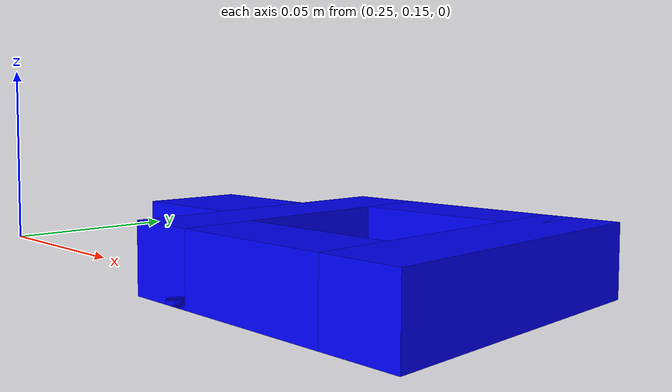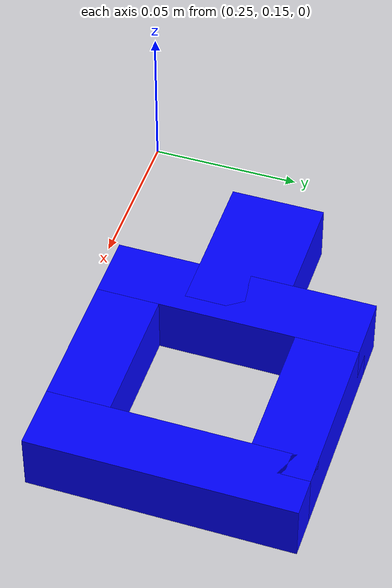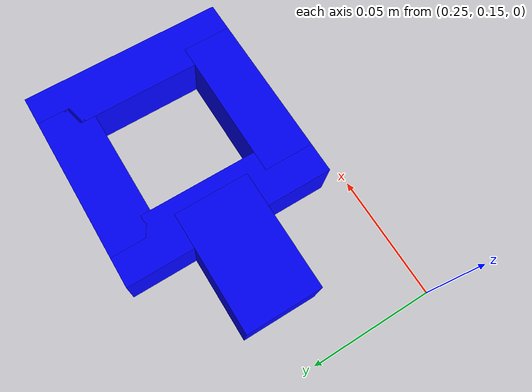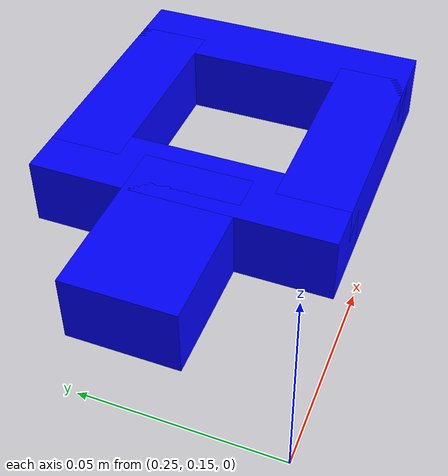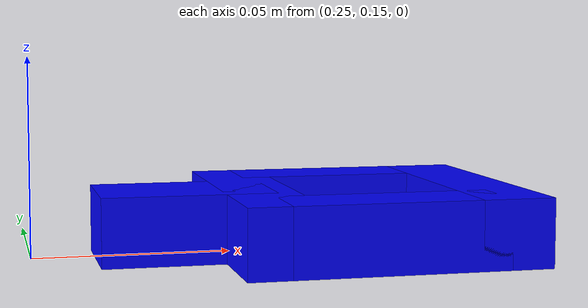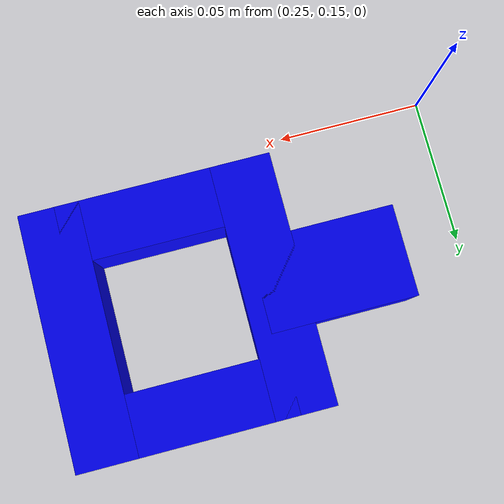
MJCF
<mujoco model="square-nut">
  <worldbody>
    <body name="square_nut" pos="0.35 0.2 0." quat="0 0 0 1">
      <freejoint />
      <geom condim="4" density="100" friction="0.95 0.3 0.2" group="1" pos="-0.03325 0 0" rgba="0 0 1 1" size="0.0105 0.04375 0.01" solimp="0.998 0.998 0.001" solref="0.02 1" type="box" />
      <geom condim="4" density="100" friction="0.95 0.3 0.1" group="1" pos="0.0 0.03325 0" rgba="0 0 1 1" size="0.03125 0.0105 0.01" solimp="0.998 0.998 0.001" solref="0.02 1" type="box" />
      <geom condim="4" density="100" friction="0.95 0.3 0.1" group="1" pos="0.0 -0.03325 0" rgba="0 0 1 1" size="0.03125 0.0105 0.01" solimp="0.998 0.998 0.001" solref="0.02 1" type="box" />
      <geom condim="4" density="100" friction="0.95 0.3 0.1" group="1" pos="0.03325 0 0" rgba="0 0 1 1" size="0.0105 0.04375 0.01" solimp="0.998 0.998 0.001" solref="0.02 1" type="box" />
      <geom condim="4" density="100" friction="0.95 0.3 0.1" group="1" pos="0.054 0 0" rgba="0 0 1 1" size="0.02525 0.015875 0.01" solimp="0.998 0.998 0.001" solref="0.02 1" type="box" />
      <site name="square_nut:bottom_site" pos="0 0 -0.05" rgba="0 0 0 0" size="0.005" />
      <site name="square_nut:top_site" pos="0 0 0.01" rgba="0 0 0 0" size="0.005" />
      <site name="square_nut:horizontal_radius_site" pos="0.11 0.06 0" rgba="0 0 0 0" size="0.005" />
    </body>
  </worldbody>
</mujoco>
